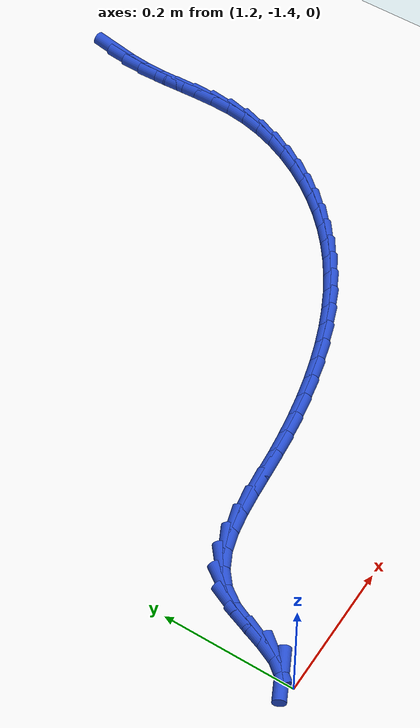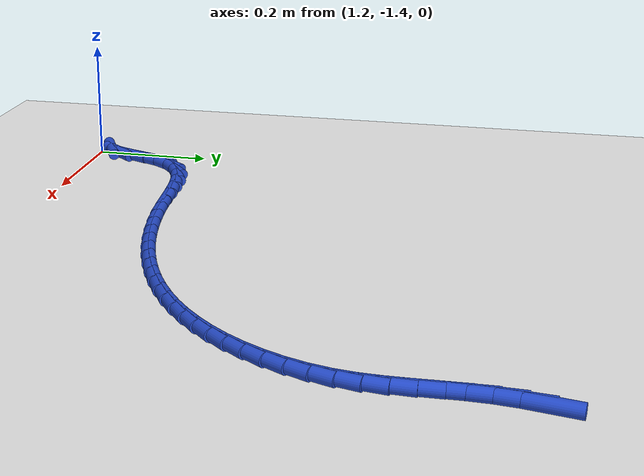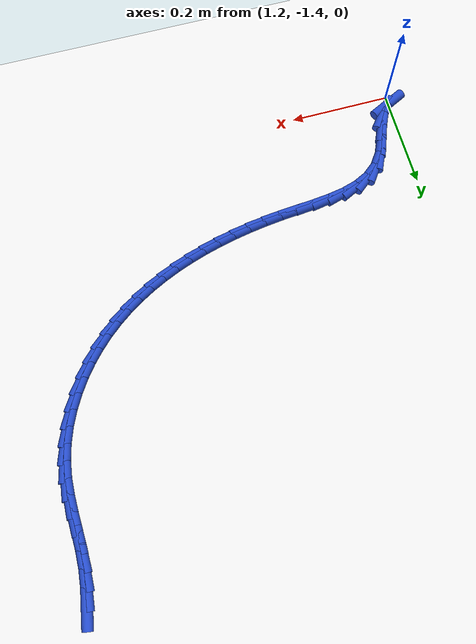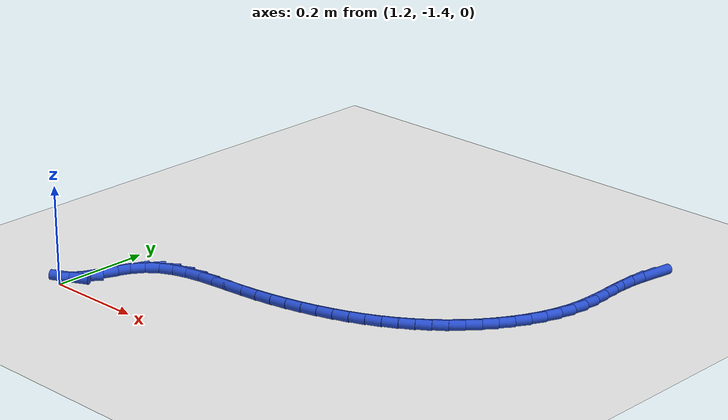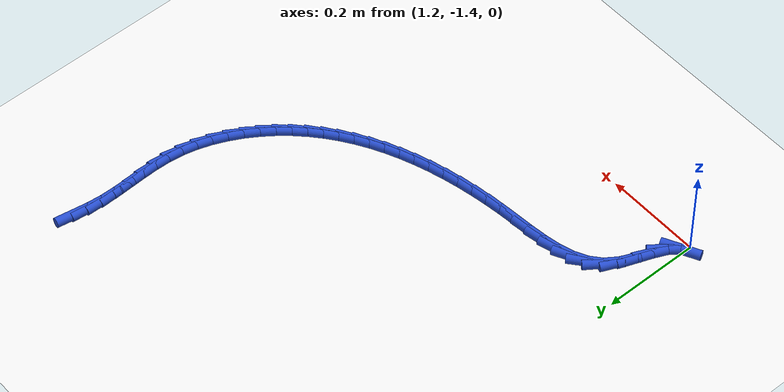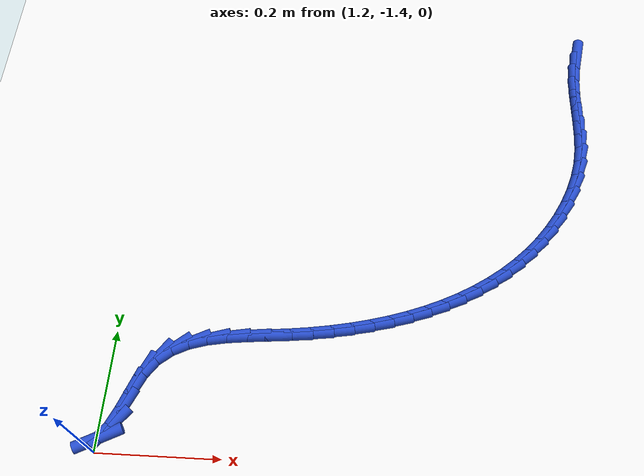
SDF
<sdf version="1.6">
 <world name="default">
  <model name="ground_plane">
   <static>1</static>
   <link name="link">
    <collision name="collision">
     <geometry><plane><normal>0 0 1</normal><size>100 100</size></plane></geometry>
     <surface><friction><ode><mu>100</mu><mu2>50</mu2></ode></friction></surface>
    </collision>
    <visual name="visual">
     <cast_shadows>0</cast_shadows>
     <geometry><plane><normal>0 0 1</normal><size>100 100</size></plane></geometry>
     <material>
      <script><uri>file://media/materials/scripts/gazebo.material</uri><name>Gazebo/WhiteGlow</name></script>
     </material>
    </visual>
   </link>
  </model>
  <model name="line">
   <link name="link_146">
    <pose>1.9965071363670455 -0.5893436232679194 0.01 0 1.57 1.4047568437098972</pose>
    <collision name="collision">
     <geometry><cylinder><radius>0.01</radius><length>0.08</length></cylinder></geometry>
    </collision>
    <visual name="visual">
     <material>
      <script><name>Gazebo/Blue</name><uri>file://media/materials/scripts/gazebo.material</uri></script>
     </material>
     <geometry><cylinder><radius>0.01</radius><length>0.08</length></cylinder></geometry>
    </visual>
   </link>
   <link name="link_147">
    <pose>1.9914933642764348 -0.619261881347825 0.01 0 1.57 1.4770911757620213</pose>
    <collision name="collision">
     <geometry><cylinder><radius>0.01</radius><length>0.08</length></cylinder></geometry>
    </collision>
    <visual name="visual">
     <material>
      <script><name>Gazebo/Blue</name><uri>file://media/materials/scripts/gazebo.material</uri></script>
     </material>
     <geometry><cylinder><radius>0.01</radius><length>0.08</length></cylinder></geometry>
    </visual>
   </link>
   <link name="link_148">
    <pose>1.9886549788445207 -0.6494637742586965 0.01 0 1.57 1.5536989346588497</pose>
    <collision name="collision">
     <geometry><cylinder><radius>0.01</radius><length>0.08</length></cylinder></geometry>
    </collision>
    <visual name="visual">
     <material>
      <script><name>Gazebo/Blue</name><uri>file://media/materials/scripts/gazebo.material</uri></script>
     </material>
     <geometry><cylinder><radius>0.01</radius><length>0.08</length></cylinder></geometry>
    </visual>
   </link>
   <link name="link_149">
    <pose>1.9881331694901367 -0.6799806217402059 0.01 0 1.57 -1.5395873241234328</pose>
    <collision name="collision">
     <geometry><cylinder><radius>0.01</radius><length>0.08</length></cylinder></geometry>
    </collision>
    <visual name="visual">
     <material>
      <script><name>Gazebo/Blue</name><uri>file://media/materials/scripts/gazebo.material</uri></script>
     </material>
     <geometry><cylinder><radius>0.01</radius><length>0.08</length></cylinder></geometry>
    </visual>
   </link>
   <link name="link_150">
    <pose>1.9890930217000873 -0.7107262552103186 0.01 0 1.57 -1.5264616736454009</pose>
    <collision name="collision">
     <geometry><cylinder><radius>0.01</radius><length>0.08</length></cylinder></geometry>
    </collision>
    <visual name="visual">
     <material>
      <script><name>Gazebo/Blue</name><uri>file://media/materials/scripts/gazebo.material</uri></script>
     </material>
     <geometry><cylinder><radius>0.01</radius><length>0.08</length></cylinder></geometry>
    </visual>
   </link>
   <link name="link_151">
    <pose>1.990462071047597 -0.7415859134958298 0.01 0 1.57 -1.54792906542039</pose>
    <collision name="collision">
     <geometry><cylinder><radius>0.01</radius><length>0.08</length></cylinder></geometry>
    </collision>
    <visual name="visual">
     <material>
      <script><name>Gazebo/Blue</name><uri>file://media/materials/scripts/gazebo.material</uri></script>
     </material>
     <geometry><cylinder><radius>0.01</radius><length>0.08</length></cylinder></geometry>
    </visual>
   </link>
   <link name="link_152">
    <pose>1.991167853105894 -0.7724448354235346 0.01 0 1.57 1.537307390004728</pose>
    <collision name="collision">
     <geometry><cylinder><radius>0.01</radius><length>0.08</length></cylinder></geometry>
    </collision>
    <visual name="visual">
     <material>
      <script><name>Gazebo/Blue</name><uri>file://media/materials/scripts/gazebo.material</uri></script>
     </material>
     <geometry><cylinder><radius>0.01</radius><length>0.08</length></cylinder></geometry>
    </visual>
   </link>
   <link name="link_153">
    <pose>1.990137903448204 -0.8031882598202287 0.01 0 1.57 1.446440154748231</pose>
    <collision name="collision">
     <geometry><cylinder><radius>0.01</radius><length>0.08</length></cylinder></geometry>
    </collision>
    <visual name="visual">
     <material>
      <script><name>Gazebo/Blue</name><uri>file://media/materials/scripts/gazebo.material</uri></script>
     </material>
     <geometry><cylinder><radius>0.01</radius><length>0.08</length></cylinder></geometry>
    </visual>
   </link>
   <link name="link_154">
    <pose>1.9863239950803202 -0.8336992348590614 0.01 0 1.57 1.3421130693477743</pose>
    <collision name="collision">
     <geometry><cylinder><radius>0.01</radius><length>0.08</length></cylinder></geometry>
    </collision>
    <visual name="visual">
     <material>
      <script><name>Gazebo/Blue</name><uri>file://media/materials/scripts/gazebo.material</uri></script>
     </material>
     <geometry><cylinder><radius>0.01</radius><length>0.08</length></cylinder></geometry>
    </visual>
   </link>
   <link name="link_155">
    <pose>1.9793171910135163 -0.8638030277177279 0.01 0 1.57 1.245981788400404</pose>
    <collision name="collision">
     <geometry><cylinder><radius>0.01</radius><length>0.08</length></cylinder></geometry>
    </collision>
    <visual name="visual">
     <material>
      <script><name>Gazebo/Blue</name><uri>file://media/materials/scripts/gazebo.material</uri></script>
     </material>
     <geometry><cylinder><radius>0.01</radius><length>0.08</length></cylinder></geometry>
    </visual>
   </link>
   <link name="link_156">
    <pose>1.9693969074418611 -0.8932626900977136 0.01 0 1.57 1.157842711658586</pose>
    <collision name="collision">
     <geometry><cylinder><radius>0.01</radius><length>0.08</length></cylinder></geometry>
    </collision>
    <visual name="visual">
     <material>
      <script><name>Gazebo/Blue</name><uri>file://media/materials/scripts/gazebo.material</uri></script>
     </material>
     <geometry><cylinder><radius>0.01</radius><length>0.08</length></cylinder></geometry>
    </visual>
   </link>
   <link name="link_157">
    <pose>1.9568766274495255 -0.9218381946302775 0.01 0 1.57 1.0761403704777643</pose>
    <collision name="collision">
     <geometry><cylinder><radius>0.01</radius><length>0.08</length></cylinder></geometry>
    </collision>
    <visual name="visual">
     <material>
      <script><name>Gazebo/Blue</name><uri>file://media/materials/scripts/gazebo.material</uri></script>
     </material>
     <geometry><cylinder><radius>0.01</radius><length>0.08</length></cylinder></geometry>
    </visual>
   </link>
   <link name="link_158">
    <pose>1.9420698341206806 -0.9492895139466788 0.01 0 1.57 0.9992001105367296</pose>
    <collision name="collision">
     <geometry><cylinder><radius>0.01</radius><length>0.08</length></cylinder></geometry>
    </collision>
    <visual name="visual">
     <material>
      <script><name>Gazebo/Blue</name><uri>file://media/materials/scripts/gazebo.material</uri></script>
     </material>
     <geometry><cylinder><radius>0.01</radius><length>0.08</length></cylinder></geometry>
    </visual>
   </link>
   <link name="link_159">
    <pose>1.9252900105394957 -0.9753766206781761 0.01 0 1.57 0.9252326952863026</pose>
    <collision name="collision">
     <geometry><cylinder><radius>0.01</radius><length>0.08</length></cylinder></geometry>
    </collision>
    <visual name="visual">
     <material>
      <script><name>Gazebo/Blue</name><uri>file://media/materials/scripts/gazebo.material</uri></script>
     </material>
     <geometry><cylinder><radius>0.01</radius><length>0.08</length></cylinder></geometry>
    </visual>
   </link>
   <link name="link_160">
    <pose>1.90683717036665 -0.9998749768024588 0.01 0 1.57 0.8525735230025329</pose>
    <collision name="collision">
     <geometry><cylinder><radius>0.01</radius><length>0.08</length></cylinder></geometry>
    </collision>
    <visual name="visual">
     <material>
      <script><name>Gazebo/Blue</name><uri>file://media/materials/scripts/gazebo.material</uri></script>
     </material>
     <geometry><cylinder><radius>0.01</radius><length>0.08</length></cylinder></geometry>
    </visual>
   </link>
   <link name="link_161">
    <pose>1.886867654069501 -1.022725263236642 0.01 0 1.57 0.7813212368000637</pose>
    <collision name="collision">
     <geometry><cylinder><radius>0.01</radius><length>0.08</length></cylinder></geometry>
    </collision>
    <visual name="visual">
     <material>
      <script><name>Gazebo/Blue</name><uri>file://media/materials/scripts/gazebo.material</uri></script>
     </material>
     <geometry><cylinder><radius>0.01</radius><length>0.08</length></cylinder></geometry>
    </visual>
   </link>
   <link name="link_162">
    <pose>1.8654508925888955 -1.043968103687897 0.01 0 1.57 0.7121097967398571</pose>
    <collision name="collision">
     <geometry><cylinder><radius>0.01</radius><length>0.08</length></cylinder></geometry>
    </collision>
    <visual name="visual">
     <material>
      <script><name>Gazebo/Blue</name><uri>file://media/materials/scripts/gazebo.material</uri></script>
     </material>
     <geometry><cylinder><radius>0.01</radius><length>0.08</length></cylinder></geometry>
    </visual>
   </link>
   <link name="link_163">
    <pose>1.8426551073452113 -1.0636455127678797 0.01 0 1.57 0.6454641906770442</pose>
    <collision name="collision">
     <geometry><cylinder><radius>0.01</radius><length>0.08</length></cylinder></geometry>
    </collision>
    <visual name="visual">
     <material>
      <script><name>Gazebo/Blue</name><uri>file://media/materials/scripts/gazebo.material</uri></script>
     </material>
     <geometry><cylinder><radius>0.01</radius><length>0.08</length></cylinder></geometry>
    </visual>
   </link>
   <link name="link_164">
    <pose>1.8185485197588251 -1.081799505088245 0.01 0 1.57 0.581781367506033</pose>
    <collision name="collision">
     <geometry><cylinder><radius>0.01</radius><length>0.08</length></cylinder></geometry>
    </collision>
    <visual name="visual">
     <material>
      <script><name>Gazebo/Blue</name><uri>file://media/materials/scripts/gazebo.material</uri></script>
     </material>
     <geometry><cylinder><radius>0.01</radius><length>0.08</length></cylinder></geometry>
    </visual>
   </link>
   <link name="link_165">
    <pose>1.793199351250115 -1.098472095260649 0.01 0 1.57 0.5213290461114816</pose>
    <collision name="collision">
     <geometry><cylinder><radius>0.01</radius><length>0.08</length></cylinder></geometry>
    </collision>
    <visual name="visual">
     <material>
      <script><name>Gazebo/Blue</name><uri>file://media/materials/scripts/gazebo.material</uri></script>
     </material>
     <geometry><cylinder><radius>0.01</radius><length>0.08</length></cylinder></geometry>
    </visual>
   </link>
   <link name="link_166">
    <pose>1.7666758232394588 -1.1137052978967472 0.01 0 1.57 0.4642553697231188</pose>
    <collision name="collision">
     <geometry><cylinder><radius>0.01</radius><length>0.08</length></cylinder></geometry>
    </collision>
    <visual name="visual">
     <material>
      <script><name>Gazebo/Blue</name><uri>file://media/materials/scripts/gazebo.material</uri></script>
     </material>
     <geometry><cylinder><radius>0.01</radius><length>0.08</length></cylinder></geometry>
    </visual>
   </link>
   <link name="link_167">
    <pose>1.7390461571472349 -1.1275411276081955 0.01 0 1.57 0.41060557843147877</pose>
    <collision name="collision">
     <geometry><cylinder><radius>0.01</radius><length>0.08</length></cylinder></geometry>
    </collision>
    <visual name="visual">
     <material>
      <script><name>Gazebo/Blue</name><uri>file://media/materials/scripts/gazebo.material</uri></script>
     </material>
     <geometry><cylinder><radius>0.01</radius><length>0.08</length></cylinder></geometry>
    </visual>
   </link>
   <link name="link_168">
    <pose>1.7103785743938194 -1.1400215990066487 0.01 0 1.57 0.3603419483997567</pose>
    <collision name="collision">
     <geometry><cylinder><radius>0.01</radius><length>0.08</length></cylinder></geometry>
    </collision>
    <visual name="visual">
     <material>
      <script><name>Gazebo/Blue</name><uri>file://media/materials/scripts/gazebo.material</uri></script>
     </material>
     <geometry><cylinder><radius>0.01</radius><length>0.08</length></cylinder></geometry>
    </visual>
   </link>
   <link name="link_169">
    <pose>1.6807412963995916 -1.1511887267037633 0.01 0 1.57 0.31336400325837704</pose>
    <collision name="collision">
     <geometry><cylinder><radius>0.01</radius><length>0.08</length></cylinder></geometry>
    </collision>
    <visual name="visual">
     <material>
      <script><name>Gazebo/Blue</name><uri>file://media/materials/scripts/gazebo.material</uri></script>
     </material>
     <geometry><cylinder><radius>0.01</radius><length>0.08</length></cylinder></geometry>
    </visual>
   </link>
   <link name="link_170">
    <pose>1.650202544584928 -1.1610845253111939 0.01 0 1.57 0.2695270054312126</pose>
    <collision name="collision">
     <geometry><cylinder><radius>0.01</radius><length>0.08</length></cylinder></geometry>
    </collision>
    <visual name="visual">
     <material>
      <script><name>Gazebo/Blue</name><uri>file://media/materials/scripts/gazebo.material</uri></script>
     </material>
     <geometry><cylinder><radius>0.01</radius><length>0.08</length></cylinder></geometry>
    </visual>
   </link>
   <link name="link_171">
    <pose>1.6188305403702072 -1.1697510094405974 0.01 0 1.57 0.2286576703095569</pose>
    <collision name="collision">
     <geometry><cylinder><radius>0.01</radius><length>0.08</length></cylinder></geometry>
    </collision>
    <visual name="visual">
     <material>
      <script><name>Gazebo/Blue</name><uri>file://media/materials/scripts/gazebo.material</uri></script>
     </material>
     <geometry><cylinder><radius>0.01</radius><length>0.08</length></cylinder></geometry>
    </visual>
   </link>
   <link name="link_172">
    <pose>1.5866935051758069 -1.1772301937036285 0.01 0 1.57 0.19056676050436264</pose>
    <collision name="collision">
     <geometry><cylinder><radius>0.01</radius><length>0.08</length></cylinder></geometry>
    </collision>
    <visual name="visual">
     <material>
      <script><name>Gazebo/Blue</name><uri>file://media/materials/scripts/gazebo.material</uri></script>
     </material>
     <geometry><cylinder><radius>0.01</radius><length>0.08</length></cylinder></geometry>
    </visual>
   </link>
   <link name="link_173">
    <pose>1.5538596604221042 -1.183564092711943 0.01 0 1.57 0.15505868017390298</pose>
    <collision name="collision">
     <geometry><cylinder><radius>0.01</radius><length>0.08</length></cylinder></geometry>
    </collision>
    <visual name="visual">
     <material>
      <script><name>Gazebo/Blue</name><uri>file://media/materials/scripts/gazebo.material</uri></script>
     </material>
     <geometry><cylinder><radius>0.01</radius><length>0.08</length></cylinder></geometry>
    </visual>
   </link>
   <link name="link_174">
    <pose>1.5203972275294768 -1.1887947210771965 0.01 0 1.57 0.12193843813282637</pose>
    <collision name="collision">
     <geometry><cylinder><radius>0.01</radius><length>0.08</length></cylinder></geometry>
    </collision>
    <visual name="visual">
     <material>
      <script><name>Gazebo/Blue</name><uri>file://media/materials/scripts/gazebo.material</uri></script>
     </material>
     <geometry><cylinder><radius>0.01</radius><length>0.08</length></cylinder></geometry>
    </visual>
   </link>
   <link name="link_175">
    <pose>1.4863744279183033 -1.1929640934110448 0.01 0 1.57 0.09239992838653761</pose>
    <collision name="collision">
     <geometry><cylinder><radius>0.01</radius><length>0.08</length></cylinder></geometry>
    </collision>
    <visual name="visual">
     <material>
      <script><name>Gazebo/Blue</name><uri>file://media/materials/scripts/gazebo.material</uri></script>
     </material>
     <geometry><cylinder><radius>0.01</radius><length>0.08</length></cylinder></geometry>
    </visual>
   </link>
   <link name="link_176">
    <pose>1.4518899296991612 -1.1961595577791735 0.01 0 1.57 0.0843223813095842</pose>
    <collision name="collision">
     <geometry><cylinder><radius>0.01</radius><length>0.08</length></cylinder></geometry>
    </collision>
    <visual name="visual">
     <material>
      <script><name>Gazebo/Blue</name><uri>file://media/materials/scripts/gazebo.material</uri></script>
     </material>
     <geometry><cylinder><radius>0.01</radius><length>0.08</length></cylinder></geometry>
    </visual>
   </link>
   <link name="link_177">
    <pose>1.4174469254587037 -1.199070777034863 0.01 0 1.57 0.11094210863438729</pose>
    <collision name="collision">
     <geometry><cylinder><radius>0.01</radius><length>0.08</length></cylinder></geometry>
    </collision>
    <visual name="visual">
     <material>
      <script><name>Gazebo/Blue</name><uri>file://media/materials/scripts/gazebo.material</uri></script>
     </material>
     <geometry><cylinder><radius>0.01</radius><length>0.08</length></cylinder></geometry>
    </visual>
   </link>
   <link name="link_178">
    <pose>1.3838358080789912 -1.2028150395402386 0.01 0 1.57 0.17648156824054156</pose>
    <collision name="collision">
     <geometry><cylinder><radius>0.01</radius><length>0.08</length></cylinder></geometry>
    </collision>
    <visual name="visual">
     <material>
      <script><name>Gazebo/Blue</name><uri>file://media/materials/scripts/gazebo.material</uri></script>
     </material>
     <geometry><cylinder><radius>0.01</radius><length>0.08</length></cylinder></geometry>
    </visual>
   </link>
   <link name="link_179">
    <pose>1.3518530858458488 -1.2085187391586696 0.01 0 1.57 0.28903978338403535</pose>
    <collision name="collision">
     <geometry><cylinder><radius>0.01</radius><length>0.08</length></cylinder></geometry>
    </collision>
    <visual name="visual">
     <material>
      <script><name>Gazebo/Blue</name><uri>file://media/materials/scripts/gazebo.material</uri></script>
     </material>
     <geometry><cylinder><radius>0.01</radius><length>0.08</length></cylinder></geometry>
    </visual>
   </link>
   <link name="link_180">
    <pose>1.3222952670451014 -1.2173082697535254 0.01 0 1.57 0.4585787769671377</pose>
    <collision name="collision">
     <geometry><cylinder><radius>0.01</radius><length>0.08</length></cylinder></geometry>
    </collision>
    <visual name="visual">
     <material>
      <script><name>Gazebo/Blue</name><uri>file://media/materials/scripts/gazebo.material</uri></script>
     </material>
     <geometry><cylinder><radius>0.01</radius><length>0.08</length></cylinder></geometry>
    </visual>
   </link>
   <link name="link_181">
    <pose>1.2959588599625729 -1.2303100251881747 0.01 0 1.57 0.6878673618784567</pose>
    <collision name="collision">
     <geometry><cylinder><radius>0.01</radius><length>0.08</length></cylinder></geometry>
    </collision>
    <visual name="visual">
     <material>
      <script><name>Gazebo/Blue</name><uri>file://media/materials/scripts/gazebo.material</uri></script>
     </material>
     <geometry><cylinder><radius>0.01</radius><length>0.08</length></cylinder></geometry>
    </visual>
   </link>
   <link name="link_182">
    <pose>1.27364037288409 -1.248650399325988 0.01 0 1.57 0.9537288187847932</pose>
    <collision name="collision">
     <geometry><cylinder><radius>0.01</radius><length>0.08</length></cylinder></geometry>
    </collision>
    <visual name="visual">
     <material>
      <script><name>Gazebo/Blue</name><uri>file://media/materials/scripts/gazebo.material</uri></script>
     </material>
     <geometry><cylinder><radius>0.01</radius><length>0.08</length></cylinder></geometry>
    </visual>
   </link>
   <link name="link_183">
    <pose>1.2560940255619097 -1.273381288631001 0.01 0 1.57 1.1473532621701705</pose>
    <collision name="collision">
     <geometry><cylinder><radius>0.01</radius><length>0.08</length></cylinder></geometry>
    </collision>
    <visual name="visual">
     <material>
      <script><name>Gazebo/Blue</name><uri>file://media/materials/scripts/gazebo.material</uri></script>
     </material>
     <geometry><cylinder><radius>0.01</radius><length>0.08</length></cylinder></geometry>
    </visual>
   </link>
   <link name="link_184">
    <pose>1.2426911993914305 -1.3031185187793648 0.01 0 1.57 1.2082261501676008</pose>
    <collision name="collision">
     <geometry><cylinder><radius>0.01</radius><length>0.08</length></cylinder></geometry>
    </collision>
    <visual name="visual">
     <material>
      <script><name>Gazebo/Blue</name><uri>file://media/materials/scripts/gazebo.material</uri></script>
     </material>
     <geometry><cylinder><radius>0.01</radius><length>0.08</length></cylinder></geometry>
    </visual>
   </link>
   <link name="link_185">
    <pose>1.2311448854835945 -1.3335564198820868 0.01 0 1.57 1.145523281553833</pose>
    <collision name="collision">
     <geometry><cylinder><radius>0.01</radius><length>0.08</length></cylinder></geometry>
    </collision>
    <visual name="visual">
     <material>
      <script><name>Gazebo/Blue</name><uri>file://media/materials/scripts/gazebo.material</uri></script>
     </material>
     <geometry><cylinder><radius>0.01</radius><length>0.08</length></cylinder></geometry>
    </visual>
   </link>
   <link name="link_186">
    <pose>1.2190701049837096 -1.360216733713884 0.01 0 1.57 0.8954927558392387</pose>
    <collision name="collision">
     <geometry><cylinder><radius>0.01</radius><length>0.08</length></cylinder></geometry>
    </collision>
    <visual name="visual">
     <material>
      <script><name>Gazebo/Blue</name><uri>file://media/materials/scripts/gazebo.material</uri></script>
     </material>
     <geometry><cylinder><radius>0.01</radius><length>0.08</length></cylinder></geometry>
    </visual>
   </link>
   <link name="link_187">
    <pose>1.2041751484242411 -1.378813969906157 0.01 0 1.57 0.46483748720645734</pose>
    <collision name="collision">
     <geometry><cylinder><radius>0.01</radius><length>0.08</length></cylinder></geometry>
    </collision>
    <visual name="visual">
     <material>
      <script><name>Gazebo/Blue</name><uri>file://media/materials/scripts/gazebo.material</uri></script>
     </material>
     <geometry><cylinder><radius>0.01</radius><length>0.08</length></cylinder></geometry>
    </visual>
   </link>
  </model>
 </world>
</sdf>
